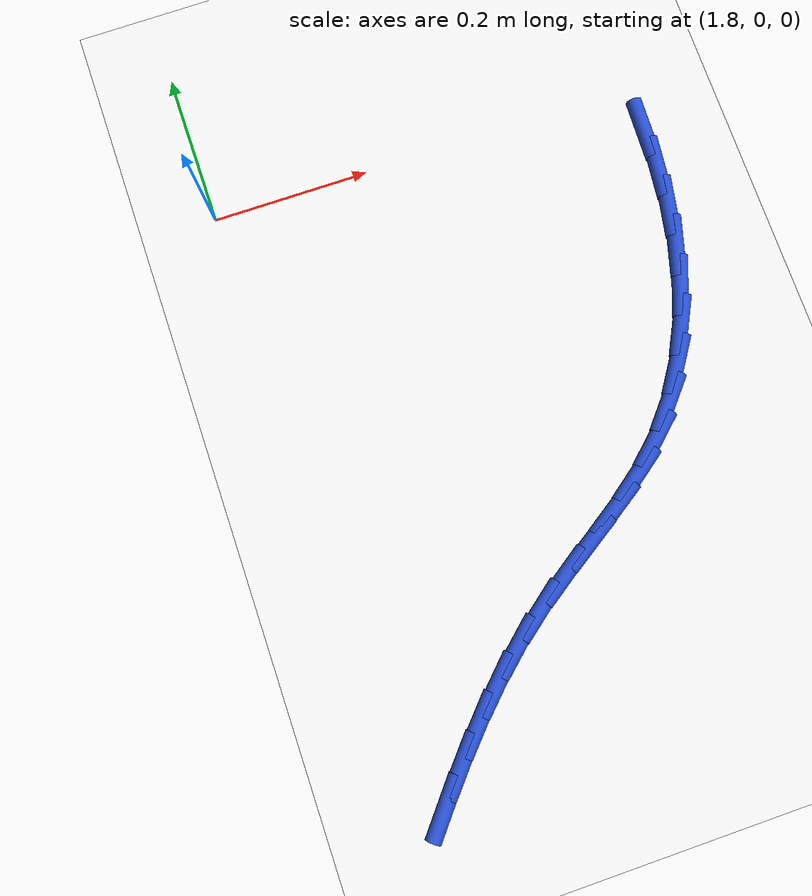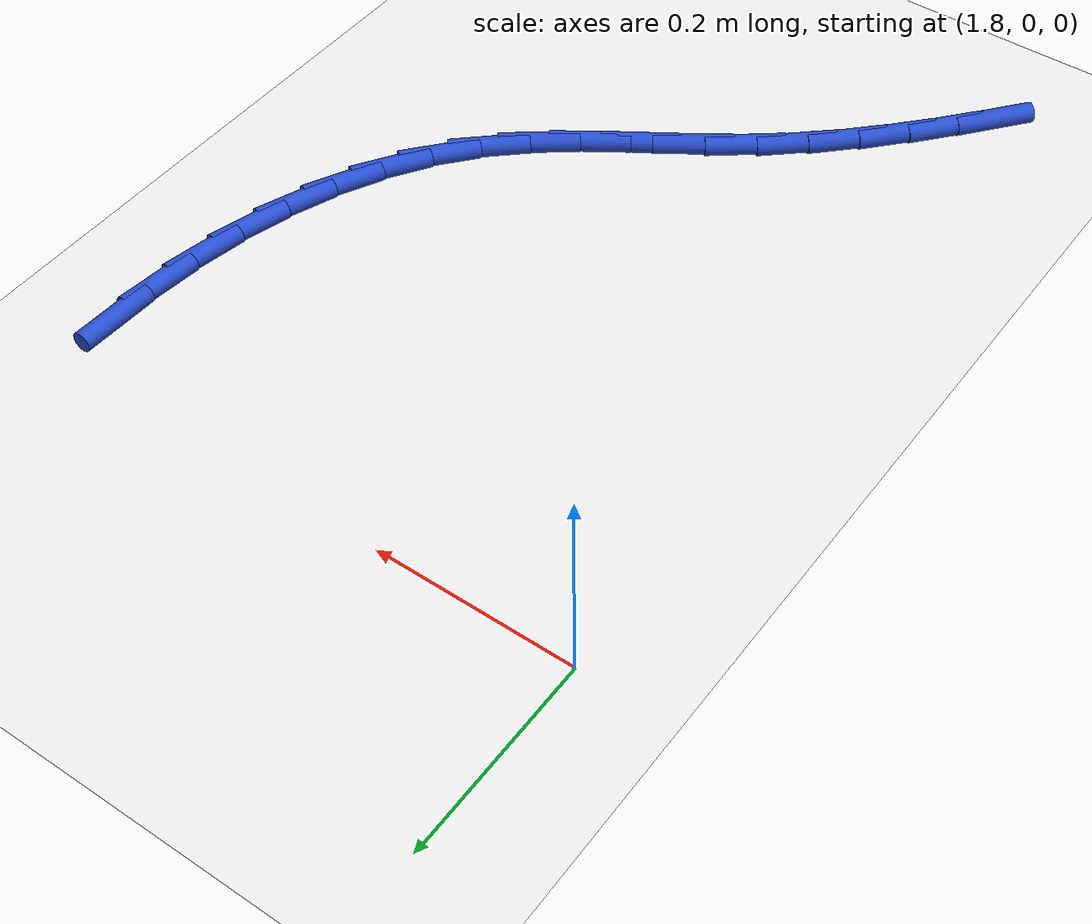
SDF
<sdf version="1.6">
 <world name="default">
  <model name="ground_plane">
   <static>1</static>
   <link name="link">
    <collision name="collision">
     <geometry><plane><normal>0 0 1</normal><size>100 100</size></plane></geometry>
     <surface><friction><ode><mu>100</mu><mu2>50</mu2></ode></friction></surface>
    </collision>
    <visual name="visual">
     <cast_shadows>0</cast_shadows>
     <geometry><plane><normal>0 0 1</normal><size>100 100</size></plane></geometry>
     <material>
      <script><uri>file://media/materials/scripts/gazebo.material</uri><name>Gazebo/WhiteGlow</name></script>
     </material>
    </visual>
   </link>
  </model>
  <model name="line">
   <link name="link_74">
    <pose>2.3542233278838296 -0.06322819205160066 0.01 0 1.57 1.5352542161491665</pose>
    <collision name="collision">
     <geometry><cylinder><radius>0.01</radius><length>0.08</length></cylinder></geometry>
    </collision>
    <visual name="visual">
     <material>
      <script><name>Gazebo/Blue</name><uri>file://media/materials/scripts/gazebo.material</uri></script>
     </material>
     <geometry><cylinder><radius>0.01</radius><length>0.08</length></cylinder></geometry>
    </visual>
   </link>
   <link name="link_75">
    <pose>2.3522819633674206 -0.11782672155578001 0.01 0 1.57 1.462653083772761</pose>
    <collision name="collision">
     <geometry><cylinder><radius>0.01</radius><length>0.08</length></cylinder></geometry>
    </collision>
    <visual name="visual">
     <material>
      <script><name>Gazebo/Blue</name><uri>file://media/materials/scripts/gazebo.material</uri></script>
     </material>
     <geometry><cylinder><radius>0.01</radius><length>0.08</length></cylinder></geometry>
    </visual>
   </link>
   <link name="link_76">
    <pose>2.3464596726115565 -0.17145536929594282 0.01 0 1.57 1.3846809257380137</pose>
    <collision name="collision">
     <geometry><cylinder><radius>0.01</radius><length>0.08</length></cylinder></geometry>
    </collision>
    <visual name="visual">
     <material>
      <script><name>Gazebo/Blue</name><uri>file://media/materials/scripts/gazebo.material</uri></script>
     </material>
     <geometry><cylinder><radius>0.01</radius><length>0.08</length></cylinder></geometry>
    </visual>
   </link>
   <link name="link_77">
    <pose>2.3366371855272585 -0.22362091142047172 0.01 0 1.57 1.2999428534817339</pose>
    <collision name="collision">
     <geometry><cylinder><radius>0.01</radius><length>0.08</length></cylinder></geometry>
    </collision>
    <visual name="visual">
     <material>
      <script><name>Gazebo/Blue</name><uri>file://media/materials/scripts/gazebo.material</uri></script>
     </material>
     <geometry><cylinder><radius>0.01</radius><length>0.08</length></cylinder></geometry>
    </visual>
   </link>
   <link name="link_78">
    <pose>2.3226952320255436 -0.273830124077749 0.01 0 1.57 1.2070636128257792</pose>
    <collision name="collision">
     <geometry><cylinder><radius>0.01</radius><length>0.08</length></cylinder></geometry>
    </collision>
    <visual name="visual">
     <material>
      <script><name>Gazebo/Blue</name><uri>file://media/materials/scripts/gazebo.material</uri></script>
     </material>
     <geometry><cylinder><radius>0.01</radius><length>0.08</length></cylinder></geometry>
    </visual>
   </link>
   <link name="link_79">
    <pose>2.304514542017432 -0.3215897834161593 0.01 0 1.57 1.104826306673661</pose>
    <collision name="collision">
     <geometry><cylinder><radius>0.01</radius><length>0.08</length></cylinder></geometry>
    </collision>
    <visual name="visual">
     <material>
      <script><name>Gazebo/Blue</name><uri>file://media/materials/scripts/gazebo.material</uri></script>
     </material>
     <geometry><cylinder><radius>0.01</radius><length>0.08</length></cylinder></geometry>
    </visual>
   </link>
   <link name="link_80">
    <pose>2.281975845413942 -0.366406665584084 0.01 0 1.57 0.9924123202326143</pose>
    <collision name="collision">
     <geometry><cylinder><radius>0.01</radius><length>0.08</length></cylinder></geometry>
    </collision>
    <visual name="visual">
     <material>
      <script><name>Gazebo/Blue</name><uri>file://media/materials/scripts/gazebo.material</uri></script>
     </material>
     <geometry><cylinder><radius>0.01</radius><length>0.08</length></cylinder></geometry>
    </visual>
   </link>
   <link name="link_81">
    <pose>2.254959872126093 -0.4077875467299079 0.01 0 1.57 0.8697441000128217</pose>
    <collision name="collision">
     <geometry><cylinder><radius>0.01</radius><length>0.08</length></cylinder></geometry>
    </collision>
    <visual name="visual">
     <material>
      <script><name>Gazebo/Blue</name><uri>file://media/materials/scripts/gazebo.material</uri></script>
     </material>
     <geometry><cylinder><radius>0.01</radius><length>0.08</length></cylinder></geometry>
    </visual>
   </link>
   <link name="link_82">
    <pose>2.2233473520649034 -0.44523920300201303 0.01 0 1.57 0.742580368761801</pose>
    <collision name="collision">
     <geometry><cylinder><radius>0.01</radius><length>0.08</length></cylinder></geometry>
    </collision>
    <visual name="visual">
     <material>
      <script><name>Gazebo/Blue</name><uri>file://media/materials/scripts/gazebo.material</uri></script>
     </material>
     <geometry><cylinder><radius>0.01</radius><length>0.08</length></cylinder></geometry>
    </visual>
   </link>
   <link name="link_83">
    <pose>2.187164941681696 -0.47844859245238525 0.01 0 1.57 0.6452162542716688</pose>
    <collision name="collision">
     <geometry><cylinder><radius>0.01</radius><length>0.08</length></cylinder></geometry>
    </collision>
    <visual name="visual">
     <material>
      <script><name>Gazebo/Blue</name><uri>file://media/materials/scripts/gazebo.material</uri></script>
     </material>
     <geometry><cylinder><radius>0.01</radius><length>0.08</length></cylinder></geometry>
    </visual>
   </link>
   <link name="link_84">
    <pose>2.147445339004207 -0.508344876819664 0.01 0 1.57 0.5908001423601669</pose>
    <collision name="collision">
     <geometry><cylinder><radius>0.01</radius><length>0.08</length></cylinder></geometry>
    </collision>
    <visual name="visual">
     <material>
      <script><name>Gazebo/Blue</name><uri>file://media/materials/scripts/gazebo.material</uri></script>
     </material>
     <geometry><cylinder><radius>0.01</radius><length>0.08</length></cylinder></geometry>
    </visual>
   </link>
   <link name="link_85">
    <pose>2.105645286398673 -0.5363808039973027 0.01 0 1.57 0.577297307391716</pose>
    <collision name="collision">
     <geometry><cylinder><radius>0.01</radius><length>0.08</length></cylinder></geometry>
    </collision>
    <visual name="visual">
     <material>
      <script><name>Gazebo/Blue</name><uri>file://media/materials/scripts/gazebo.material</uri></script>
     </material>
     <geometry><cylinder><radius>0.01</radius><length>0.08</length></cylinder></geometry>
    </visual>
   </link>
   <link name="link_86">
    <pose>2.063223013739167 -0.5640109585699677 0.01 0 1.57 0.6037295384172106</pose>
    <collision name="collision">
     <geometry><cylinder><radius>0.01</radius><length>0.08</length></cylinder></geometry>
    </collision>
    <visual name="visual">
     <material>
      <script><name>Gazebo/Blue</name><uri>file://media/materials/scripts/gazebo.material</uri></script>
     </material>
     <geometry><cylinder><radius>0.01</radius><length>0.08</length></cylinder></geometry>
    </visual>
   </link>
   <link name="link_87">
    <pose>2.021636750899761 -0.592689925122324 0.01 0 1.57 0.6657687123250827</pose>
    <collision name="collision">
     <geometry><cylinder><radius>0.01</radius><length>0.08</length></cylinder></geometry>
    </collision>
    <visual name="visual">
     <material>
      <script><name>Gazebo/Blue</name><uri>file://media/materials/scripts/gazebo.material</uri></script>
     </material>
     <geometry><cylinder><radius>0.01</radius><length>0.08</length></cylinder></geometry>
    </visual>
   </link>
   <link name="link_88">
    <pose>1.9821662827363558 -0.6236896368322442 0.01 0 1.57 0.7310450905245823</pose>
    <collision name="collision">
     <geometry><cylinder><radius>0.01</radius><length>0.08</length></cylinder></geometry>
    </collision>
    <visual name="visual">
     <material>
      <script><name>Gazebo/Blue</name><uri>file://media/materials/scripts/gazebo.material</uri></script>
     </material>
     <geometry><cylinder><radius>0.01</radius><length>0.08</length></cylinder></geometry>
    </visual>
   </link>
   <link name="link_89">
    <pose>1.9449247564454646 -0.6570878886949666 0.01 0 1.57 0.7857737313233586</pose>
    <collision name="collision">
     <geometry><cylinder><radius>0.01</radius><length>0.08</length></cylinder></geometry>
    </collision>
    <visual name="visual">
     <material>
      <script><name>Gazebo/Blue</name><uri>file://media/materials/scripts/gazebo.material</uri></script>
     </material>
     <geometry><cylinder><radius>0.01</radius><length>0.08</length></cylinder></geometry>
    </visual>
   </link>
   <link name="link_90">
    <pose>1.9095565574167468 -0.6924826640284464 0.01 0 1.57 0.8296413809363786</pose>
    <collision name="collision">
     <geometry><cylinder><radius>0.01</radius><length>0.08</length></cylinder></geometry>
    </collision>
    <visual name="visual">
     <material>
      <script><name>Gazebo/Blue</name><uri>file://media/materials/scripts/gazebo.material</uri></script>
     </material>
     <geometry><cylinder><radius>0.01</radius><length>0.08</length></cylinder></geometry>
    </visual>
   </link>
   <link name="link_91">
    <pose>1.8757048004314842 -0.7294706455908919 0.01 0 1.57 0.8626487404103224</pose>
    <collision name="collision">
     <geometry><cylinder><radius>0.01</radius><length>0.08</length></cylinder></geometry>
    </collision>
    <visual name="visual">
     <material>
      <script><name>Gazebo/Blue</name><uri>file://media/materials/scripts/gazebo.material</uri></script>
     </material>
     <geometry><cylinder><radius>0.01</radius><length>0.08</length></cylinder></geometry>
    </visual>
   </link>
   <link name="link_92">
    <pose>1.8430126002709573 -0.767648516140514 0.01 0 1.57 0.8849203216156811</pose>
    <collision name="collision">
     <geometry><cylinder><radius>0.01</radius><length>0.08</length></cylinder></geometry>
    </collision>
    <visual name="visual">
     <material>
      <script><name>Gazebo/Blue</name><uri>file://media/materials/scripts/gazebo.material</uri></script>
     </material>
     <geometry><cylinder><radius>0.01</radius><length>0.08</length></cylinder></geometry>
    </visual>
   </link>
  </model>
 </world>
</sdf>
